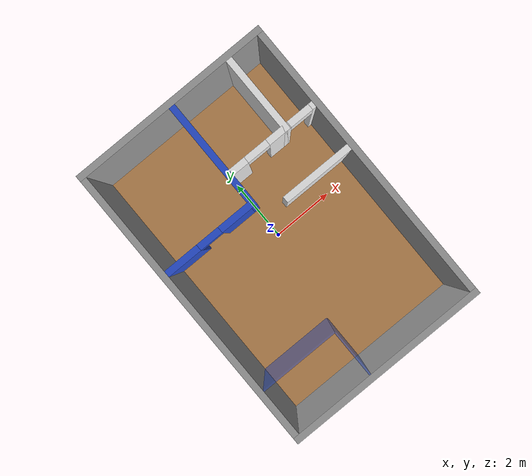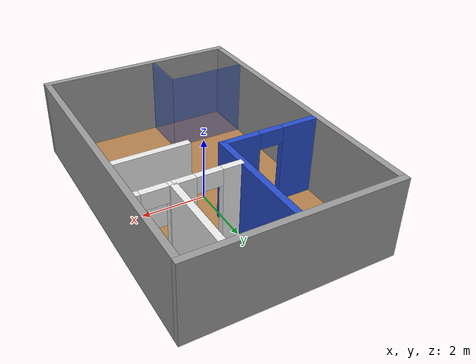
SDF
<?xml version='1.0'?>
<sdf version='1.4'>

<world name='isr-test-bed'>
    <light name='sun' type='directional'>
      <cast_shadows>1</cast_shadows>
      <pose>0 0 10 0 -0 0</pose>
      <diffuse>0.8 0.8 0.8 1</diffuse>
      <specular>0.2 0.2 0.2 1</specular>
      <attenuation>
        <range>1000</range>
        <constant>0.9</constant>
        <linear>0.01</linear>
        <quadratic>0.001</quadratic>
      </attenuation>
      <direction>0.5 0.1 -0.9</direction>
    </light>
    <scene>
      <ambient>0.4 0.4 0.4 1</ambient>
      <background>0.7 0.7 0.7 1</background>
      <shadows>1</shadows>
    </scene>
    <physics type='ode'>
      <max_step_size>0.01</max_step_size>
      <real_time_factor>1</real_time_factor>
      <real_time_update_rate>100</real_time_update_rate>
      <gravity>0 0 -9.8</gravity>
    </physics>

  <model name='inside_hallway'>
    <link name='Wall'>
      <collision name='Wall'>
        <geometry>
          <box>
            <size>2.25 0.2 2.5</size>
          </box>
        </geometry>
        <pose>0 0 1.25 0 -0 0</pose>
      </collision>
      <visual name='Wall'>
        <pose>0 0 1.25 0 0 0</pose>
        <geometry>
          <box>
            <size>2.25 0.2 2.5</size>
          </box>
        </geometry>
        <material>
          <script>
            <uri>file://media/materials/scripts/gazebo.material</uri>
            <name>Gazebo/White</name>
          </script>
        </material>
      </visual>
      <velocity_decay>
        <linear>0</linear>
        <angular>0</angular>
      </velocity_decay>
      <pose>1.875 0.6 0 0 0 0 </pose>
    </link>
    <static>1</static>
  </model>

  <model name='floor'>
    <link name='Floor'>
      <!--test-->
      <collision name='Wall'>
        <geometry>
          <box>
            <size>6 9 0.1</size>
          </box>
        </geometry>
        <pose>0 0 0 0 0 0</pose>
      </collision>
      <!--test-->
      <pose>0 0 -0.049 0 0 0</pose>
      <visual name='Floor'>
        <pose>0 0 0 0 0 0</pose>
        <geometry>
          <box>
            <size>6 9 0.1</size>
          </box>
        </geometry>
        <material>
          <script>
            <uri>file://media/materials/scripts/gazebo.material</uri>
            <name>Gazebo/WoodFloor</name>
          </script>
        </material>
      </visual>
      <velocity_decay>
        <linear>0</linear>
        <angular>0</angular>
      </velocity_decay>
    </link>
    <static>1</static>
  </model>

  <model name='bedroom'>
    <link name='Wall_South'>
      <pose>-1.5 1.1 0 0 0 0</pose>
      <visual name='Wall_South_Visual_0'>
        <pose>-0.9375 0 1.25 0 -0 0</pose>
        <geometry>
          <box>
            <size>1.125 0.2 2.5</size>
          </box>
        </geometry>
        <material>
          <script>
            <uri>file://media/materials/scripts/gazebo.material</uri>
            <name>Gazebo/Blue</name>
          </script>
        </material>
      </visual>
      <collision name='Wall_South_Collision_0'>
        <geometry>
          <box>
            <size>1.125 0.2 2.5</size>
          </box>
        </geometry>
        <pose>-0.9375 0 1.25 0 -0 0</pose>
      </collision>
      <visual name='Wall_South_Visual_1'>
        <pose>0.9375 0 1.25 0 -0 0</pose>
        <geometry>
          <box>
            <size>1.125 0.2 2.5</size>
          </box>
        </geometry>
        <material>
          <script>
            <uri>file://media/materials/scripts/gazebo.material</uri>
            <name>Gazebo/Blue</name>
          </script>
        </material>
      </visual>
      <collision name='Wall_South_Collision_1'>
        <geometry>
          <box>
            <size>1.125 0.2 2.5</size>
          </box>
        </geometry>
        <pose>0.9375 0 1.25 0 -0 0</pose>
      </collision>
      <visual name='Wall_South_Visual_2'>
        <pose>0 0 2.25 0 -0 0</pose>
        <geometry>
          <box>
            <size>0.75 0.2 0.5</size>
          </box>
        </geometry>
        <material>
          <script>
            <uri>file://media/materials/scripts/gazebo.material</uri>
            <name>Gazebo/Blue</name>
          </script>
        </material>
      </visual>
      <collision name='Wall_South_Collision_2'>
        <geometry>
          <box>
            <size>0.75 0.2 0.5</size>
          </box>
        </geometry>
        <pose>0 0 2.25 0 -0 0</pose>
      </collision>
    </link>
    <link name='Wall_East'>
      <collision name='Wall_East_Collision'>
        <geometry>
          <box>
            <size>3.5 0.2 2.5</size>
          </box>
        </geometry>
        <pose>0 0 1.25 0 -0 0</pose>
      </collision>
      <visual name='Wall_East_Visual'>
        <pose>0 0 1.25 0 -0 0</pose>
        <geometry>
          <box>
            <size>3.5 0.2 2.5</size>
          </box>
        </geometry>
        <material>
          <script>
            <uri>file://media/materials/scripts/gazebo.material</uri>
            <name>Gazebo/Blue</name>
          </script>
        </material>
      </visual>
      <velocity_decay>
        <linear>0</linear>
        <angular>0</angular>
      </velocity_decay>
      <pose>0 2.75 0 0 0 1.5708</pose>
    </link>
    <static>1</static>
  </model>

  <model name='bathroom'>
    <link name='Wall_South'>
      <pose>1.0 2.1 0 0 0 0</pose>
      <visual name='Wall_South_Visual_0'>
        <pose>-0.6875 0 1.25 0 -0 0</pose>
        <geometry>
          <box>
            <size>0.625 0.2 2.5</size>
          </box>
        </geometry>
        <material>
          <script>
            <uri>file://media/materials/scripts/gazebo.material</uri>
            <name>Gazebo/White</name>
          </script>
        </material>
      </visual>
      <collision name='Wall_South_Collision_0'>
        <geometry>
          <box>
            <size>0.625 0.2 2.5</size>
          </box>
        </geometry>
        <pose>-0.6875 0 1.25 0 -0 0</pose>
      </collision>
      <visual name='Wall_South_Visual_1'>
        <pose>0.6875 0 1.25 0 -0 0</pose>
        <geometry>
          <box>
            <size>0.625 0.2 2.5</size>
          </box>
        </geometry>
        <material>
          <script>
            <uri>file://media/materials/scripts/gazebo.material</uri>
            <name>Gazebo/White</name>
          </script>
        </material>
      </visual>
      <collision name='Wall_South_Collision_1'>
        <geometry>
          <box>
            <size>0.625 0.2 2.5</size>
          </box>
        </geometry>
        <pose>0.6875 0 1.25 0 -0 0</pose>
      </collision>
      <visual name='Wall_South_Visual_2'>
        <pose>0 0 2.25 0 -0 0</pose>
        <geometry>
          <box>
            <size>0.75 0.2 0.5</size>
          </box>
        </geometry>
        <material>
          <script>
            <uri>file://media/materials/scripts/gazebo.material</uri>
            <name>Gazebo/White</name>
          </script>
        </material>
      </visual>
      <collision name='Wall_South_Collision_2'>
        <geometry>
          <box>
            <size>0.75 0.2 0.5</size>
          </box>
        </geometry>
        <pose>0 0 2.25 0 -0 0</pose>
      </collision>
    </link>
    <link name='Wall_East'>
      <collision name='Wall_East_Collision'>
        <geometry>
          <box>
            <size>2.5 0.2 2.5</size>
          </box>
        </geometry>
        <pose>0 0 1.25 0 -0 0</pose>
      </collision>
      <visual name='Wall_East_Visual'>
        <pose>0 0 1.25 0 -0 0</pose>
        <geometry>
          <box>
            <size>2.5 0.2 2.5</size>
          </box>
        </geometry>
        <material>
          <script>
            <uri>file://media/materials/scripts/gazebo.material</uri>
            <name>Gazebo/White</name>
          </script>
        </material>
      </visual>
      <velocity_decay>
        <linear>0</linear>
        <angular>0</angular>
      </velocity_decay>
      <pose>2.0 3.25 0 0 0 1.5708</pose>
    </link>
    <static>1</static>
  </model>

  <model name='wall_north'>
    <link name='Wall_North'>
      <collision name='Wall_North_Collision'>
        <geometry>
          <box>
            <size>6.4 0.2 2.5</size>
          </box>
        </geometry>
        <pose>0 0 1.25 0 -0 0</pose>
      </collision>
      <visual name='Wall_North_Visual'>
        <pose>0 0 1.25 0 0 0</pose>
        <geometry>
          <box>
            <size>6.4 0.2 2.5</size>
          </box>
        </geometry>
        <material>
          <script>
            <uri>file://media/materials/scripts/gazebo.material</uri>
            <name>Gazebo/Grey</name>
          </script>
        </material>
      </visual>
      <velocity_decay>
        <linear>0</linear>
        <angular>0</angular>
      </velocity_decay>
      <pose>0 4.6 0 0 0 0 </pose>
    </link>
    <link name='Wall_South'>
      <collision name='Wall_South_Collision'>
        <geometry>
          <box>
            <size>6.4 0.2 2.5</size>
          </box>
        </geometry>
        <pose>0 0 1.25 0 -0 0</pose>
      </collision>
      <visual name='Wall_South_Visual'>
        <pose>0 0 1.25 0 0 0</pose>
        <geometry>
          <box>
            <size>6.4 0.2 2.5</size>
          </box>
        </geometry>
        <material>
          <script>
            <uri>file://media/materials/scripts/gazebo.material</uri>
            <name>Gazebo/Grey</name>
          </script>
        </material>
      </visual>
      <velocity_decay>
        <linear>0</linear>
        <angular>0</angular>
      </velocity_decay>
      <pose>0 -4.6 0 0 0 0 </pose>
    </link>
    <link name='Wall_East'>
      <collision name='Wall_East_Collision'>
        <geometry>
          <box>
            <size>9 0.2 2.5</size>
          </box>
        </geometry>
        <pose>0 0 1.25 0 -0 0</pose>
      </collision>
      <visual name='Wall_East_Visual'>
        <pose>0 0 1.25 0 -0 0</pose>
        <geometry>
          <box>
            <size>9 0.2 2.5</size>
          </box>
        </geometry>
        <material>
          <script>
            <uri>file://media/materials/scripts/gazebo.material</uri>
            <name>Gazebo/Grey</name>
          </script>
        </material>
      </visual>
      <velocity_decay>
        <linear>0</linear>
        <angular>0</angular>
      </velocity_decay>
      <pose>3.1 0 0 0 0 1.57079632679</pose>
    </link>
    <link name='Wall_West'>
      <collision name='Wall_West_Collision'>
        <geometry>
          <box>
            <size>9 0.2 2.5</size>
          </box>
        </geometry>
        <pose>0 0 1.25 0 -0 0</pose>
      </collision>
      <visual name='Wall_West_Visual'>
        <pose>0 0 1.25 0 -0 0</pose>
        <geometry>
          <box>
            <size>9 0.2 2.5</size>
          </box>
        </geometry>
        <material>
          <script>
            <uri>file://media/materials/scripts/gazebo.material</uri>
            <name>Gazebo/Grey</name>
          </script>
        </material>
      </visual>
      <velocity_decay>
        <linear>0</linear>
        <angular>0</angular>
      </velocity_decay>
      <pose>-3.1 0 0 0 0 1.57079632679</pose>
    </link>
    <static>1</static>
  </model>

  <model name='outside_hallway'>
    <link name='Wall_South'>
      <visual name='Wall_South_Visual_0'>
        <pose>-0.4375 0 1.25 0 -0 0</pose>
        <geometry>
          <box>
            <size>0.125 0.2 2.5</size>
          </box>
        </geometry>
        <material>
          <script>
            <uri>file://media/materials/scripts/gazebo.material</uri>
            <name>Gazebo/White</name>
          </script>
        </material>
      </visual>
      <collision name='Wall_South_Collision_0'>
        <geometry>
          <box>
            <size>0.125 0.2 2.5</size>
          </box>
        </geometry>
        <pose>-0.4375 0 1.25 0 -0 0</pose>
      </collision>
      <visual name='Wall_South_Visual_1'>
        <pose>0.4375 0 1.25 0 -0 0</pose>
        <geometry>
          <box>
            <size>0.125 0.2 2.5</size>
          </box>
        </geometry>
        <material>
          <script>
            <uri>file://media/materials/scripts/gazebo.material</uri>
            <name>Gazebo/White</name>
          </script>
        </material>
      </visual>
      <collision name='Wall_South_Collision_1'>
        <geometry>
          <box>
            <size>0.125 0.2 2.5</size>
          </box>
        </geometry>
        <pose>0.4375 0 1.25 0 -0 0</pose>
      </collision>
      <visual name='Wall_South_Visual_2'>
        <pose>0 0 2.25 0 -0 0</pose>
        <geometry>
          <box>
            <size>0.75 0.2 0.5</size>
          </box>
        </geometry>
        <material>
          <script>
            <uri>file://media/materials/scripts/gazebo.material</uri>
            <name>Gazebo/White</name>
          </script>
        </material>
      </visual>
      <collision name='Wall_South_Collision_2'>
        <geometry>
          <box>
            <size>0.75 0.2 0.5</size>
          </box>
        </geometry>
        <pose>0 0 2.25 0 -0 0</pose>
      </collision>
    </link>
    <pose>2.5 2.1 0 0 -0 0</pose>
    <static>1</static>
  </model>

  <model name='patio'>
    <link name='Wall_North'>
      <collision name='Wall_North_Collision'>
        <geometry>
          <box>
            <size>2.5 0.05 2.5</size>
          </box>
        </geometry>
        <pose>0 0 1.25 0 -0 0</pose>
      </collision>
      <visual name='Wall_North_Visual'>
        <pose>0 0 1.25 0 0 0</pose>
        <geometry>
          <box>
            <size>2.5 0.05 2.5</size>
          </box>
        </geometry>
        <material>
          <script>
            <uri>file://media/materials/scripts/gazebo.material</uri>
            <name>Gazebo/BlueTransparent</name>
          </script>
        </material>
      </visual>
      <velocity_decay>
        <linear>0</linear>
        <angular>0</angular>
      </velocity_decay>
      <pose>-1.75 -3 0 0 0 0 </pose>
    </link>
    <link name='Wall_East'>
      <collision name='Wall_East_Collision'>
        <geometry>
          <box>
            <size>1.5 0.05 2.5</size>
          </box>
        </geometry>
        <pose>0 0 1.25 0 -0 0</pose>
      </collision>
      <visual name='Wall_East_Visual'>
        <pose>0 0 1.25 0 -0 0</pose>
        <geometry>
          <box>
            <size>1.5 0.05 2.5</size>
          </box>
        </geometry>
        <material>
          <script>
            <uri>file://media/materials/scripts/gazebo.material</uri>
            <name>Gazebo/BlueTransparent</name>
          </script>
        </material>
      </visual>
      <velocity_decay>
        <linear>0</linear>
        <angular>0</angular>
      </velocity_decay>
      <pose>-0.5 -3.75 0 0 0 1.57079632679</pose>
    </link>
    <static>1</static>
  </model>
</world>
</sdf>
